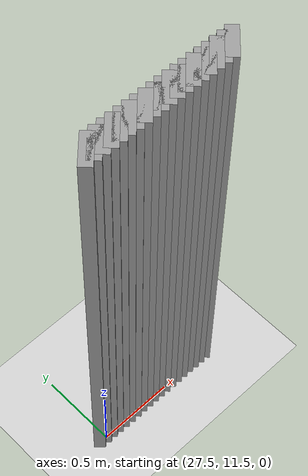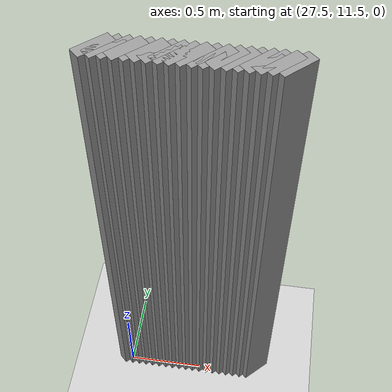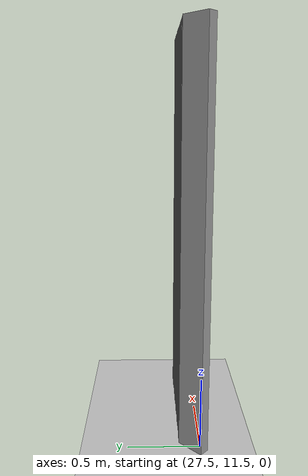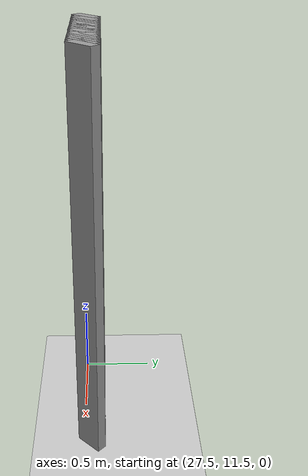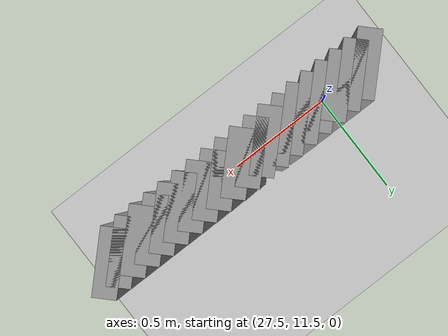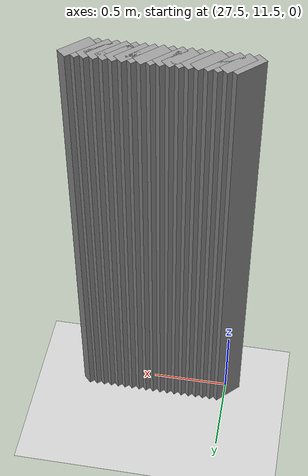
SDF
<sdf version="1.5">
 <world name="default">
  <include><uri>model://ground_plane</uri></include>
  <include><uri>model://sun</uri></include>
  <model name="grey_wall_2678">
   <static>1</static>
   <link name="link">
    <pose>27.5 11.55  1.4 0 0 -0.785398163397</pose>
    <collision name="collision"><geometry><box><size>0.0707106781187 .2  2.8</size></box></geometry></collision>
    <visual name="visual">
     <cast_shadows>0</cast_shadows>
     <geometry><box><size>0.0707106781187 .2  2.8</size></box></geometry>
     <material>
      <script>
       <uri>model://grey_wall/materials/scripts</uri>
       <uri>model://grey_wall/materials/textures</uri>
       <name>vrc/grey_wall</name>
      </script>
     </material>
    </visual>
   </link>
  </model>
  <model name="grey_wall_2679">
   <static>1</static>
   <link name="link">
    <pose>27.55 11.55  1.4 0 0 -0.785398163397</pose>
    <collision name="collision"><geometry><box><size>0.0707106781187 .2  2.8</size></box></geometry></collision>
    <visual name="visual">
     <cast_shadows>0</cast_shadows>
     <geometry><box><size>0.0707106781187 .2  2.8</size></box></geometry>
     <material>
      <script>
       <uri>model://grey_wall/materials/scripts</uri>
       <uri>model://grey_wall/materials/textures</uri>
       <name>vrc/grey_wall</name>
      </script>
     </material>
    </visual>
   </link>
  </model>
  <model name="grey_wall_2680">
   <static>1</static>
   <link name="link">
    <pose>27.6 11.55  1.4 0 0 -0.785398163397</pose>
    <collision name="collision"><geometry><box><size>0.0707106781187 .2  2.8</size></box></geometry></collision>
    <visual name="visual">
     <cast_shadows>0</cast_shadows>
     <geometry><box><size>0.0707106781187 .2  2.8</size></box></geometry>
     <material>
      <script>
       <uri>model://grey_wall/materials/scripts</uri>
       <uri>model://grey_wall/materials/textures</uri>
       <name>vrc/grey_wall</name>
      </script>
     </material>
    </visual>
   </link>
  </model>
  <model name="grey_wall_2681">
   <static>1</static>
   <link name="link">
    <pose>27.65 11.55  1.4 0 0 -0.785398163397</pose>
    <collision name="collision"><geometry><box><size>0.0707106781187 .2  2.8</size></box></geometry></collision>
    <visual name="visual">
     <cast_shadows>0</cast_shadows>
     <geometry><box><size>0.0707106781187 .2  2.8</size></box></geometry>
     <material>
      <script>
       <uri>model://grey_wall/materials/scripts</uri>
       <uri>model://grey_wall/materials/textures</uri>
       <name>vrc/grey_wall</name>
      </script>
     </material>
    </visual>
   </link>
  </model>
  <model name="grey_wall_2682">
   <static>1</static>
   <link name="link">
    <pose>27.7 11.55  1.4 0 0 -0.785398163397</pose>
    <collision name="collision"><geometry><box><size>0.0707106781187 .2  2.8</size></box></geometry></collision>
    <visual name="visual">
     <cast_shadows>0</cast_shadows>
     <geometry><box><size>0.0707106781187 .2  2.8</size></box></geometry>
     <material>
      <script>
       <uri>model://grey_wall/materials/scripts</uri>
       <uri>model://grey_wall/materials/textures</uri>
       <name>vrc/grey_wall</name>
      </script>
     </material>
    </visual>
   </link>
  </model>
  <model name="grey_wall_2683">
   <static>1</static>
   <link name="link">
    <pose>27.75 11.55  1.4 0 0 -0.785398163397</pose>
    <collision name="collision"><geometry><box><size>0.0707106781187 .2  2.8</size></box></geometry></collision>
    <visual name="visual">
     <cast_shadows>0</cast_shadows>
     <geometry><box><size>0.0707106781187 .2  2.8</size></box></geometry>
     <material>
      <script>
       <uri>model://grey_wall/materials/scripts</uri>
       <uri>model://grey_wall/materials/textures</uri>
       <name>vrc/grey_wall</name>
      </script>
     </material>
    </visual>
   </link>
  </model>
  <model name="grey_wall_2684">
   <static>1</static>
   <link name="link">
    <pose>27.8 11.55  1.4 0 0 -0.785398163397</pose>
    <collision name="collision"><geometry><box><size>0.0707106781187 .2  2.8</size></box></geometry></collision>
    <visual name="visual">
     <cast_shadows>0</cast_shadows>
     <geometry><box><size>0.0707106781187 .2  2.8</size></box></geometry>
     <material>
      <script>
       <uri>model://grey_wall/materials/scripts</uri>
       <uri>model://grey_wall/materials/textures</uri>
       <name>vrc/grey_wall</name>
      </script>
     </material>
    </visual>
   </link>
  </model>
  <model name="grey_wall_2685">
   <static>1</static>
   <link name="link">
    <pose>27.85 11.55  1.4 0 0 -0.785398163397</pose>
    <collision name="collision"><geometry><box><size>0.0707106781187 .2  2.8</size></box></geometry></collision>
    <visual name="visual">
     <cast_shadows>0</cast_shadows>
     <geometry><box><size>0.0707106781187 .2  2.8</size></box></geometry>
     <material>
      <script>
       <uri>model://grey_wall/materials/scripts</uri>
       <uri>model://grey_wall/materials/textures</uri>
       <name>vrc/grey_wall</name>
      </script>
     </material>
    </visual>
   </link>
  </model>
  <model name="grey_wall_2686">
   <static>1</static>
   <link name="link">
    <pose>27.9 11.55  1.4 0 0 -0.785398163397</pose>
    <collision name="collision"><geometry><box><size>0.0707106781187 .2  2.8</size></box></geometry></collision>
    <visual name="visual">
     <cast_shadows>0</cast_shadows>
     <geometry><box><size>0.0707106781187 .2  2.8</size></box></geometry>
     <material>
      <script>
       <uri>model://grey_wall/materials/scripts</uri>
       <uri>model://grey_wall/materials/textures</uri>
       <name>vrc/grey_wall</name>
      </script>
     </material>
    </visual>
   </link>
  </model>
  <model name="grey_wall_2687">
   <static>1</static>
   <link name="link">
    <pose>27.95 11.55  1.4 0 0 -0.785398163397</pose>
    <collision name="collision"><geometry><box><size>0.0707106781187 .2  2.8</size></box></geometry></collision>
    <visual name="visual">
     <cast_shadows>0</cast_shadows>
     <geometry><box><size>0.0707106781187 .2  2.8</size></box></geometry>
     <material>
      <script>
       <uri>model://grey_wall/materials/scripts</uri>
       <uri>model://grey_wall/materials/textures</uri>
       <name>vrc/grey_wall</name>
      </script>
     </material>
    </visual>
   </link>
  </model>
  <model name="grey_wall_2688">
   <static>1</static>
   <link name="link">
    <pose>28.0 11.55  1.4 0 0 -0.785398163397</pose>
    <collision name="collision"><geometry><box><size>0.0707106781187 .2  2.8</size></box></geometry></collision>
    <visual name="visual">
     <cast_shadows>0</cast_shadows>
     <geometry><box><size>0.0707106781187 .2  2.8</size></box></geometry>
     <material>
      <script>
       <uri>model://grey_wall/materials/scripts</uri>
       <uri>model://grey_wall/materials/textures</uri>
       <name>vrc/grey_wall</name>
      </script>
     </material>
    </visual>
   </link>
  </model>
  <model name="grey_wall_2689">
   <static>1</static>
   <link name="link">
    <pose>28.05 11.55  1.4 0 0 -0.785398163397</pose>
    <collision name="collision"><geometry><box><size>0.0707106781187 .2  2.8</size></box></geometry></collision>
    <visual name="visual">
     <cast_shadows>0</cast_shadows>
     <geometry><box><size>0.0707106781187 .2  2.8</size></box></geometry>
     <material>
      <script>
       <uri>model://grey_wall/materials/scripts</uri>
       <uri>model://grey_wall/materials/textures</uri>
       <name>vrc/grey_wall</name>
      </script>
     </material>
    </visual>
   </link>
  </model>
  <model name="grey_wall_2690">
   <static>1</static>
   <link name="link">
    <pose>28.1 11.55  1.4 0 0 -0.785398163397</pose>
    <collision name="collision"><geometry><box><size>0.0707106781187 .2  2.8</size></box></geometry></collision>
    <visual name="visual">
     <cast_shadows>0</cast_shadows>
     <geometry><box><size>0.0707106781187 .2  2.8</size></box></geometry>
     <material>
      <script>
       <uri>model://grey_wall/materials/scripts</uri>
       <uri>model://grey_wall/materials/textures</uri>
       <name>vrc/grey_wall</name>
      </script>
     </material>
    </visual>
   </link>
  </model>
  <model name="grey_wall_2691">
   <static>1</static>
   <link name="link">
    <pose>28.15 11.55  1.4 0 0 -0.785398163397</pose>
    <collision name="collision"><geometry><box><size>0.0707106781187 .2  2.8</size></box></geometry></collision>
    <visual name="visual">
     <cast_shadows>0</cast_shadows>
     <geometry><box><size>0.0707106781187 .2  2.8</size></box></geometry>
     <material>
      <script>
       <uri>model://grey_wall/materials/scripts</uri>
       <uri>model://grey_wall/materials/textures</uri>
       <name>vrc/grey_wall</name>
      </script>
     </material>
    </visual>
   </link>
  </model>
  <model name="grey_wall_2692">
   <static>1</static>
   <link name="link">
    <pose>28.2 11.55  1.4 0 0 -0.785398163397</pose>
    <collision name="collision"><geometry><box><size>0.0707106781187 .2  2.8</size></box></geometry></collision>
    <visual name="visual">
     <cast_shadows>0</cast_shadows>
     <geometry><box><size>0.0707106781187 .2  2.8</size></box></geometry>
     <material>
      <script>
       <uri>model://grey_wall/materials/scripts</uri>
       <uri>model://grey_wall/materials/textures</uri>
       <name>vrc/grey_wall</name>
      </script>
     </material>
    </visual>
   </link>
  </model>
  <model name="grey_wall_2693">
   <static>1</static>
   <link name="link">
    <pose>28.25 11.55  1.4 0 0 -0.785398163397</pose>
    <collision name="collision"><geometry><box><size>0.0707106781187 .2  2.8</size></box></geometry></collision>
    <visual name="visual">
     <cast_shadows>0</cast_shadows>
     <geometry><box><size>0.0707106781187 .2  2.8</size></box></geometry>
     <material>
      <script>
       <uri>model://grey_wall/materials/scripts</uri>
       <uri>model://grey_wall/materials/textures</uri>
       <name>vrc/grey_wall</name>
      </script>
     </material>
    </visual>
   </link>
  </model>
  <model name="grey_wall_2694">
   <static>1</static>
   <link name="link">
    <pose>28.3 11.55  1.4 0 0 -0.785398163397</pose>
    <collision name="collision"><geometry><box><size>0.0707106781187 .2  2.8</size></box></geometry></collision>
    <visual name="visual">
     <cast_shadows>0</cast_shadows>
     <geometry><box><size>0.0707106781187 .2  2.8</size></box></geometry>
     <material>
      <script>
       <uri>model://grey_wall/materials/scripts</uri>
       <uri>model://grey_wall/materials/textures</uri>
       <name>vrc/grey_wall</name>
      </script>
     </material>
    </visual>
   </link>
  </model>
  <model name="grey_wall_2695">
   <static>1</static>
   <link name="link">
    <pose>28.35 11.55  1.4 0 0 -0.785398163397</pose>
    <collision name="collision"><geometry><box><size>0.0707106781187 .2  2.8</size></box></geometry></collision>
    <visual name="visual">
     <cast_shadows>0</cast_shadows>
     <geometry><box><size>0.0707106781187 .2  2.8</size></box></geometry>
     <material>
      <script>
       <uri>model://grey_wall/materials/scripts</uri>
       <uri>model://grey_wall/materials/textures</uri>
       <name>vrc/grey_wall</name>
      </script>
     </material>
    </visual>
   </link>
  </model>
  <model name="grey_wall_2696">
   <static>1</static>
   <link name="link">
    <pose>28.4 11.55  1.4 0 0 -0.785398163397</pose>
    <collision name="collision"><geometry><box><size>0.0707106781187 .2  2.8</size></box></geometry></collision>
    <visual name="visual">
     <cast_shadows>0</cast_shadows>
     <geometry><box><size>0.0707106781187 .2  2.8</size></box></geometry>
     <material>
      <script>
       <uri>model://grey_wall/materials/scripts</uri>
       <uri>model://grey_wall/materials/textures</uri>
       <name>vrc/grey_wall</name>
      </script>
     </material>
    </visual>
   </link>
  </model>
 </world>
</sdf>
